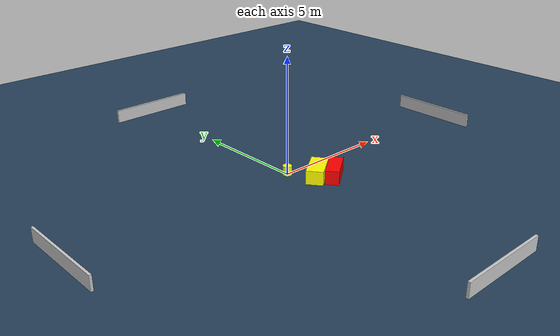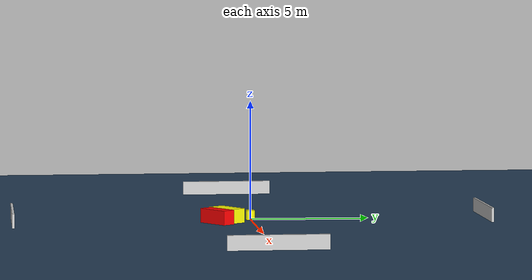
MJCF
<?xml version="1.0" ?>
<mujoco model="generated_environment">
  <option timestep="0.01" integrator="RK4" cone="elliptic"/>
  <default>
    <geom density="1"/>
  </default>
  <asset>
    <texture builtin="gradient" height="3072" name="skybox" rgb1="0.3 0.5 0.7" rgb2="0 0 0" type="skybox" width="512"/>
    <texture builtin="checker" height="300" name="groundplane" rgb1="0.2 0.3 0.4" rgb2="0.1 0.2 0.3" type="2d" width="300"/>
    <material name="groundplane" reflectance="0.2" texrepeat="5 5" texture="groundplane"/>
  </asset>
  <worldbody>
    <light dir="0 0 -1" directional="true" pos="0 0 1.5"/>
    <geom condim="3" friction="0.5 0.005 0.001" material="groundplane" name="floor" pos="0 0 0" size="0 0 0.05" type="plane"/>
    <body name="walls">
      <geom name="wall_1" condim="4" pos="-10.0 0.0 0.3" rgba="0.800000011920929 0.800000011920929 0.800000011920929 1.0" size="0.05 2.0 0.3" type="box"/>
      <geom name="wall_2" condim="4" pos="10.0 0.0 0.3" rgba="0.800000011920929 0.800000011920929 0.800000011920929 1.0" size="0.05 2.0 0.3" type="box"/>
      <geom name="wall_3" condim="4" pos="0.0 -10.0 0.3" rgba="0.800000011920929 0.800000011920929 0.800000011920929 1.0" size="2.0 0.05 0.3" type="box"/>
      <geom name="wall_4" condim="4" pos="0.0 10.0 0.3" rgba="0.800000011920929 0.800000011920929 0.800000011920929 1.0" size="2.0 0.05 0.3" type="box"/>
    </body>
    <body name="robot">
      <joint name="joint_x" type="slide" pos="0 0 0" axis="1 0 0"/>
      <joint name="joint_y" type="slide" pos="0 0 0" axis="0 1 0"/>
      <geom name="robot" type="cylinder" pos="0.0 0.0 0.2" size="0.2 0.2 0.0" mass="5.0" friction="1.0 0.005 0.0001" condim="4" rgba="1.0 1.0 0.0 1.0"/>
    </body>
    <body name="obstacle_1_movable">
      <geom name="obstacle_1_movable" condim="4" pos="0.6796501554246951 -1.0650495398275739 0.3" euler="0 0 305.5488453353125" friction="0.0 0.005 0.001" rgba="1.0 1.0 0.0 1.0" size="0.35929842616861773 0.7059861737517019 0.3" type="box" mass="0.1"/>
      <joint type="free"/>
    </body>
    <body name="obstacle_2_static">
      <geom name="obstacle_2_static" condim="4" pos="1.2104921646843994 -1.512639881323841 0.3" euler="0 0 306.38987909071386" friction="0.0 0.005 0.001" rgba="1.0 0.0 0.0 1.0" size="0.2882390209878398 0.7313524587486042 0.3" type="box"/>
    </body>
  </worldbody>
  <actuator>
    <motor name="actuator_x" joint="joint_x" gear="1" ctrlrange="-1 1"/>
    <motor name="actuator_y" joint="joint_y" gear="1" ctrlrange="-1 1"/>
  </actuator>
</mujoco>
